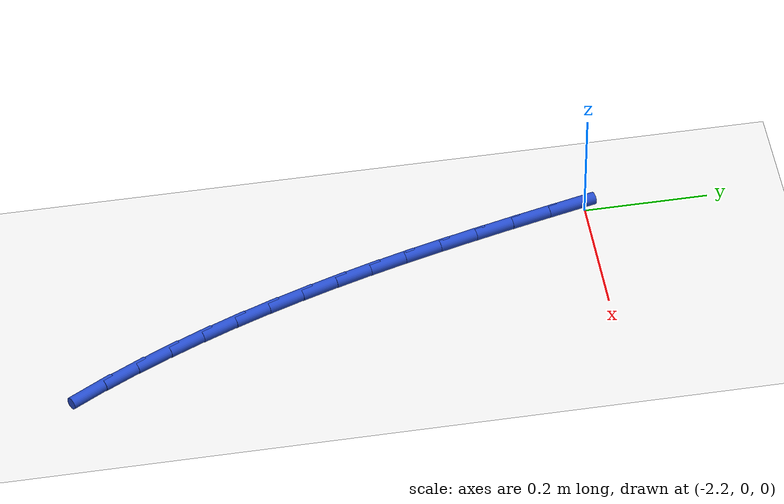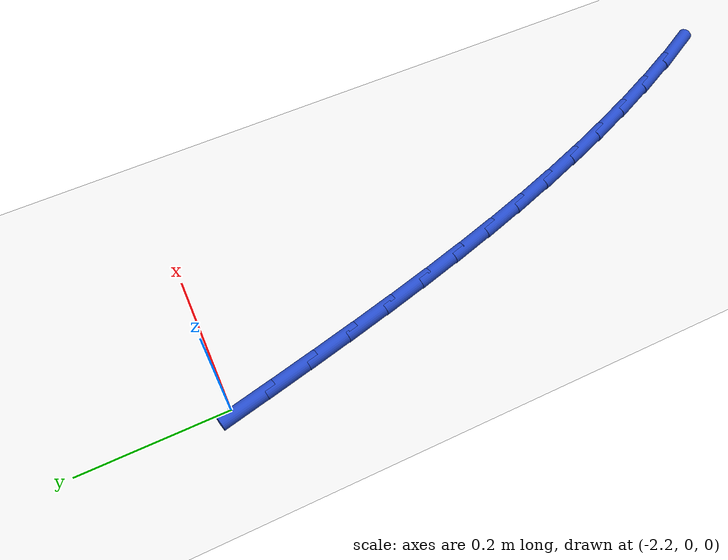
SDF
<sdf version="1.6">
 <world name="default">
  <model name="ground_plane">
   <static>1</static>
   <link name="link">
    <collision name="collision">
     <geometry><plane><normal>0 0 1</normal><size>100 100</size></plane></geometry>
     <surface><friction><ode><mu>100</mu><mu2>50</mu2></ode></friction></surface>
    </collision>
    <visual name="visual">
     <cast_shadows>0</cast_shadows>
     <geometry><plane><normal>0 0 1</normal><size>100 100</size></plane></geometry>
     <material>
      <script><uri>file://media/materials/scripts/gazebo.material</uri><name>Gazebo/WhiteGlow</name></script>
     </material>
    </visual>
   </link>
  </model>
  <model name="line">
   <link name="link_61">
    <pose>-2.2066650814707707 -0.020843402598012362 0.01 0 1.57 -1.343354355109191</pose>
    <collision name="collision">
     <geometry><cylinder><radius>0.01</radius><length>0.08</length></cylinder></geometry>
    </collision>
    <visual name="visual">
     <material>
      <script><name>Gazebo/Blue</name><uri>file://media/materials/scripts/gazebo.material</uri></script>
     </material>
     <geometry><cylinder><radius>0.01</radius><length>0.08</length></cylinder></geometry>
    </visual>
   </link>
   <link name="link_62">
    <pose>-2.1920861989853155 -0.08383363844556538 0.01 0 1.57 -1.3371833068587726</pose>
    <collision name="collision">
     <geometry><cylinder><radius>0.01</radius><length>0.08</length></cylinder></geometry>
    </collision>
    <visual name="visual">
     <material>
      <script><name>Gazebo/Blue</name><uri>file://media/materials/scripts/gazebo.material</uri></script>
     </material>
     <geometry><cylinder><radius>0.01</radius><length>0.08</length></cylinder></geometry>
    </visual>
   </link>
   <link name="link_63">
    <pose>-2.1773911133776678 -0.14558867071287257 0.01 0 1.57 -1.3288014788314912</pose>
    <collision name="collision">
     <geometry><cylinder><radius>0.01</radius><length>0.08</length></cylinder></geometry>
    </collision>
    <visual name="visual">
     <material>
      <script><name>Gazebo/Blue</name><uri>file://media/materials/scripts/gazebo.material</uri></script>
     </material>
     <geometry><cylinder><radius>0.01</radius><length>0.08</length></cylinder></geometry>
    </visual>
   </link>
   <link name="link_64">
    <pose>-2.162426049424113 -0.20621719908098682 0.01 0 1.57 -1.3181570452512377</pose>
    <collision name="collision">
     <geometry><cylinder><radius>0.01</radius><length>0.08</length></cylinder></geometry>
    </collision>
    <visual name="visual">
     <material>
      <script><name>Gazebo/Blue</name><uri>file://media/materials/scripts/gazebo.material</uri></script>
     </material>
     <geometry><cylinder><radius>0.01</radius><length>0.08</length></cylinder></geometry>
    </visual>
   </link>
   <link name="link_65">
    <pose>-2.1470372319009354 -0.2658279232309634 0.01 0 1.57 -1.305229164811161</pose>
    <collision name="collision">
     <geometry><cylinder><radius>0.01</radius><length>0.08</length></cylinder></geometry>
    </collision>
    <visual name="visual">
     <material>
      <script><name>Gazebo/Blue</name><uri>file://media/materials/scripts/gazebo.material</uri></script>
     </material>
     <geometry><cylinder><radius>0.01</radius><length>0.08</length></cylinder></geometry>
    </visual>
   </link>
   <link name="link_66">
    <pose>-2.131070885584419 -0.3245295428438578 0.01 0 1.57 -1.2900323157077684</pose>
    <collision name="collision">
     <geometry><cylinder><radius>0.01</radius><length>0.08</length></cylinder></geometry>
    </collision>
    <visual name="visual">
     <material>
      <script><name>Gazebo/Blue</name><uri>file://media/materials/scripts/gazebo.material</uri></script>
     </material>
     <geometry><cylinder><radius>0.01</radius><length>0.08</length></cylinder></geometry>
    </visual>
   </link>
   <link name="link_67">
    <pose>-2.1143732352508495 -0.38243075760072304 0.01 0 1.57 -1.2726199213273215</pose>
    <collision name="collision">
     <geometry><cylinder><radius>0.01</radius><length>0.08</length></cylinder></geometry>
    </collision>
    <visual name="visual">
     <material>
      <script><name>Gazebo/Blue</name><uri>file://media/materials/scripts/gazebo.material</uri></script>
     </material>
     <geometry><cylinder><radius>0.01</radius><length>0.08</length></cylinder></geometry>
    </visual>
   </link>
   <link name="link_68">
    <pose>-2.0967905056765095 -0.43964026718261445 0.01 0 1.57 -1.2530868514152023</pose>
    <collision name="collision">
     <geometry><cylinder><radius>0.01</radius><length>0.08</length></cylinder></geometry>
    </collision>
    <visual name="visual">
     <material>
      <script><name>Gazebo/Blue</name><uri>file://media/materials/scripts/gazebo.material</uri></script>
     </material>
     <geometry><cylinder><radius>0.01</radius><length>0.08</length></cylinder></geometry>
    </visual>
   </link>
   <link name="link_69">
    <pose>-2.078168921637684 -0.4962667712705866 0.01 0 1.57 -1.2315703710404606</pose>
    <collision name="collision">
     <geometry><cylinder><radius>0.01</radius><length>0.08</length></cylinder></geometry>
    </collision>
    <visual name="visual">
     <material>
      <script><name>Gazebo/Blue</name><uri>file://media/materials/scripts/gazebo.material</uri></script>
     </material>
     <geometry><cylinder><radius>0.01</radius><length>0.08</length></cylinder></geometry>
    </visual>
   </link>
   <link name="link_70">
    <pose>-2.058354707910659 -0.5524189695456951 0.01 0 1.57 -1.2082491569584444</pose>
    <collision name="collision">
     <geometry><cylinder><radius>0.01</radius><length>0.08</length></cylinder></geometry>
    </collision>
    <visual name="visual">
     <material>
      <script><name>Gazebo/Blue</name><uri>file://media/materials/scripts/gazebo.material</uri></script>
     </material>
     <geometry><cylinder><radius>0.01</radius><length>0.08</length></cylinder></geometry>
    </visual>
   </link>
   <link name="link_71">
    <pose>-2.0371940892717166 -0.6082055616889925 0.01 0 1.57 -1.183340121003757</pose>
    <collision name="collision">
     <geometry><cylinder><radius>0.01</radius><length>0.08</length></cylinder></geometry>
    </collision>
    <visual name="visual">
     <material>
      <script><name>Gazebo/Blue</name><uri>file://media/materials/scripts/gazebo.material</uri></script>
     </material>
     <geometry><cylinder><radius>0.01</radius><length>0.08</length></cylinder></geometry>
    </visual>
   </link>
   <link name="link_72">
    <pose>-2.014533290497142 -0.6637352473815346 0.01 0 1.57 -1.1570929722496097</pose>
    <collision name="collision">
     <geometry><cylinder><radius>0.01</radius><length>0.08</length></cylinder></geometry>
    </collision>
    <visual name="visual">
     <material>
      <script><name>Gazebo/Blue</name><uri>file://media/materials/scripts/gazebo.material</uri></script>
     </material>
     <geometry><cylinder><radius>0.01</radius><length>0.08</length></cylinder></geometry>
    </visual>
   </link>
   <link name="link_73">
    <pose>-1.9902185363632197 -0.7191167263043756 0.01 0 1.57 -1.1297478905450207</pose>
    <collision name="collision">
     <geometry><cylinder><radius>0.01</radius><length>0.08</length></cylinder></geometry>
    </collision>
    <visual name="visual">
     <material>
      <script><name>Gazebo/Blue</name><uri>file://media/materials/scripts/gazebo.material</uri></script>
     </material>
     <geometry><cylinder><radius>0.01</radius><length>0.08</length></cylinder></geometry>
    </visual>
   </link>
   <link name="link_74">
    <pose>-1.9640954540398086 -0.7744549746882833 0.01 0 1.57 -1.0995233041175685</pose>
    <collision name="collision">
     <geometry><cylinder><radius>0.01</radius><length>0.08</length></cylinder></geometry>
    </collision>
    <visual name="visual">
     <material>
      <script><name>Gazebo/Blue</name><uri>file://media/materials/scripts/gazebo.material</uri></script>
     </material>
     <geometry><cylinder><radius>0.01</radius><length>0.08</length></cylinder></geometry>
    </visual>
   </link>
   <link name="link_75">
    <pose>-1.9359751059903547 -0.8296396096906402 0.01 0 1.57 -1.063266060406396</pose>
    <collision name="collision">
     <geometry><cylinder><radius>0.01</radius><length>0.08</length></cylinder></geometry>
    </collision>
    <visual name="visual">
     <material>
      <script><name>Gazebo/Blue</name><uri>file://media/materials/scripts/gazebo.material</uri></script>
     </material>
     <geometry><cylinder><radius>0.01</radius><length>0.08</length></cylinder></geometry>
    </visual>
   </link>
  </model>
 </world>
</sdf>
